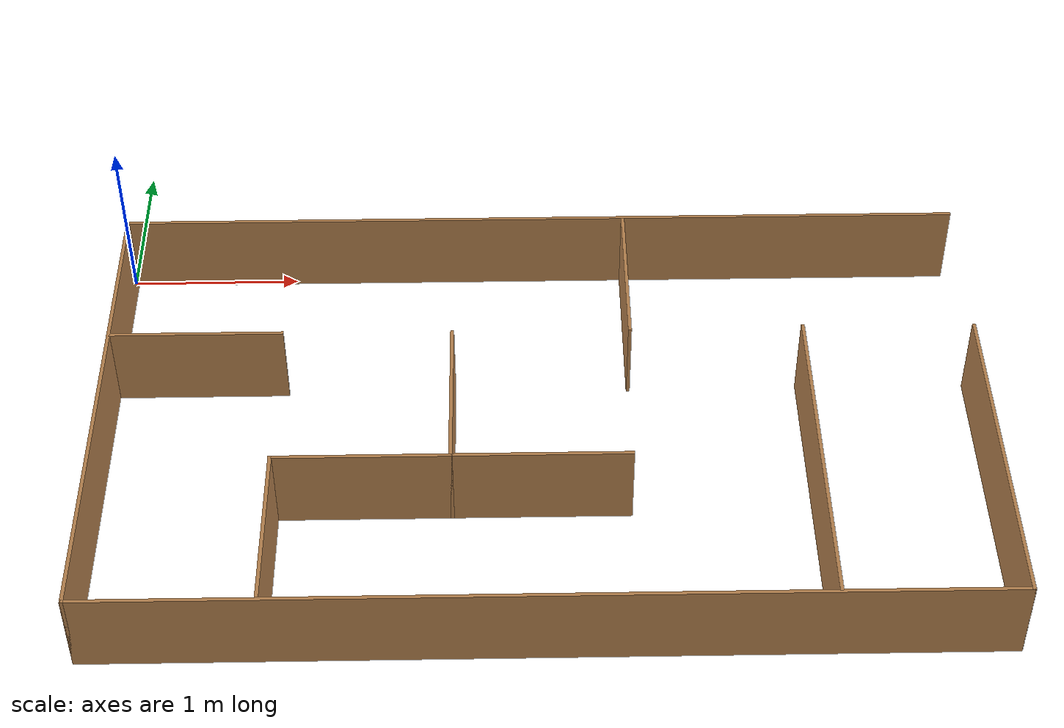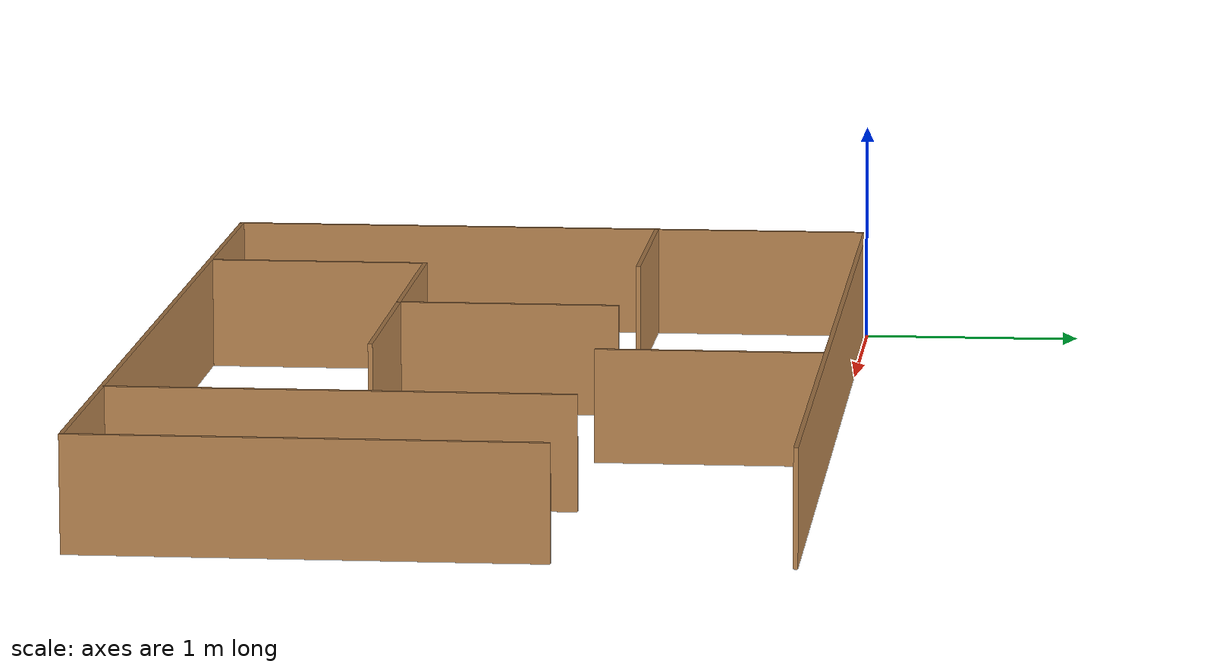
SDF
<?xml version='1.0'?>
<sdf version='1.6'>
  <model name='exp_03'>
    <pose frame=''>2.5 -1.5 0 0 -0 0</pose>
    <link name='Wall_0'>
      <collision name='Wall_0_Collision'>
        <geometry>
          <box>
            <size>5 0.02 0.5</size>
          </box>
        </geometry>
        <pose frame=''>0 0 0.25 0 -0 0</pose>
      </collision>
      <visual name='Wall_0_Visual'>
        <pose frame=''>0 0 0.25 0 -0 0</pose>
        <geometry>
          <box>
            <size>5 0.02 0.5</size>
          </box>
        </geometry>
        <material>
          <script>
            <uri>file://media/materials/scripts/gazebo.material</uri>
            <name>Gazebo/Wood</name>
          </script>
          <ambient>1 1 1 1</ambient>
        </material>
        <meta>
          <layer>0</layer>
        </meta>
      </visual>
      <pose frame=''>0 1.49 0 0 -0 0</pose>
    </link>
    <link name='Wall_10'>
      <collision name='Wall_10_Collision'>
        <geometry>
          <box>
            <size>1 0.02 0.5</size>
          </box>
        </geometry>
        <pose frame=''>0 0 0.25 0 -0 0</pose>
      </collision>
      <visual name='Wall_10_Visual'>
        <pose frame=''>0 0 0.25 0 -0 0</pose>
        <geometry>
          <box>
            <size>1 0.02 0.5</size>
          </box>
        </geometry>
        <material>
          <script>
            <uri>file://media/materials/scripts/gazebo.material</uri>
            <name>Gazebo/Wood</name>
          </script>
          <ambient>1 1 1 1</ambient>
        </material>
        <meta>
          <layer>0</layer>
        </meta>
      </visual>
      <pose frame=''>-1.98692 0.499034 0 0 -0 0</pose>
    </link>
    <link name='Wall_12'>
      <collision name='Wall_12_Collision'>
        <geometry>
          <box>
            <size>2 0.02 0.5</size>
          </box>
        </geometry>
        <pose frame=''>0 0 0.25 0 -0 0</pose>
      </collision>
      <visual name='Wall_12_Visual'>
        <pose frame=''>0 0 0.25 0 -0 0</pose>
        <geometry>
          <box>
            <size>2 0.02 0.5</size>
          </box>
        </geometry>
        <material>
          <script>
            <uri>file://media/materials/scripts/gazebo.material</uri>
            <name>Gazebo/Wood</name>
          </script>
          <ambient>1 1 1 1</ambient>
        </material>
        <meta>
          <layer>0</layer>
        </meta>
      </visual>
      <pose frame=''>1.50274 -0.486648 0 0 -0 -1.5708</pose>
    </link>
    <link name='Wall_14'>
      <collision name='Wall_14_Collision'>
        <geometry>
          <box>
            <size>1 0.02 0.5</size>
          </box>
        </geometry>
        <pose frame=''>0 0 0.25 0 -0 0</pose>
      </collision>
      <visual name='Wall_14_Visual'>
        <pose frame=''>0 0 0.25 0 -0 0</pose>
        <geometry>
          <box>
            <size>1 0.02 0.5</size>
          </box>
        </geometry>
        <material>
          <script>
            <uri>file://media/materials/scripts/gazebo.material</uri>
            <name>Gazebo/Wood</name>
          </script>
          <ambient>1 1 1 1</ambient>
        </material>
        <meta>
          <layer>0</layer>
        </meta>
      </visual>
      <pose frame=''>0.5051 0.989021 0 0 -0 -1.5708</pose>
    </link>
    <link name='Wall_16'>
      <collision name='Wall_16_Collision'>
        <geometry>
          <box>
            <size>1 0.02 0.5</size>
          </box>
        </geometry>
        <pose frame=''>0 0 0.25 0 -0 0</pose>
      </collision>
      <visual name='Wall_16_Visual'>
        <pose frame=''>0 0 0.25 0 -0 0</pose>
        <geometry>
          <box>
            <size>1 0.02 0.5</size>
          </box>
        </geometry>
        <material>
          <script>
            <uri>file://media/materials/scripts/gazebo.material</uri>
            <name>Gazebo/Wood</name>
          </script>
          <ambient>1 1 1 1</ambient>
        </material>
        <meta>
          <layer>0</layer>
        </meta>
      </visual>
      <pose frame=''>-0.013492 -0.489499 0 0 -0 0</pose>
    </link>
    <link name='Wall_18'>
      <collision name='Wall_18_Collision'>
        <geometry>
          <box>
            <size>1 0.02 0.5</size>
          </box>
        </geometry>
        <pose frame=''>0 0 0.25 0 -0 0</pose>
      </collision>
      <visual name='Wall_18_Visual'>
        <pose frame=''>0 0 0.25 0 -0 0</pose>
        <geometry>
          <box>
            <size>1 0.02 0.5</size>
          </box>
        </geometry>
        <material>
          <script>
            <uri>file://media/materials/scripts/gazebo.material</uri>
            <name>Gazebo/Wood</name>
          </script>
          <ambient>1 1 1 1</ambient>
        </material>
        <meta>
          <layer>0</layer>
        </meta>
      </visual>
      <pose frame=''>-1.007 -0.49 0 0 -0 0</pose>
    </link>
    <link name='Wall_2'>
      <collision name='Wall_2_Collision'>
        <geometry>
          <box>
            <size>3 0.02 0.5</size>
          </box>
        </geometry>
        <pose frame=''>0 0 0.25 0 -0 0</pose>
      </collision>
      <visual name='Wall_2_Visual'>
        <pose frame=''>0 0 0.25 0 -0 0</pose>
        <geometry>
          <box>
            <size>3 0.02 0.5</size>
          </box>
        </geometry>
        <material>
          <script>
            <uri>file://media/materials/scripts/gazebo.material</uri>
            <name>Gazebo/Wood</name>
          </script>
          <ambient>1 1 1 1</ambient>
        </material>
        <meta>
          <layer>0</layer>
        </meta>
      </visual>
      <pose frame=''>-2.49 0 0 0 -0 -1.5708</pose>
    </link>
    <link name='Wall_20'>
      <collision name='Wall_20_Collision'>
        <geometry>
          <box>
            <size>1 0.02 0.5</size>
          </box>
        </geometry>
        <pose frame=''>0 0 0.25 0 -0 0</pose>
      </collision>
      <visual name='Wall_20_Visual'>
        <pose frame=''>0 0 0.25 0 -0 0</pose>
        <geometry>
          <box>
            <size>1 0.02 0.5</size>
          </box>
        </geometry>
        <material>
          <script>
            <uri>file://media/materials/scripts/gazebo.material</uri>
            <name>Gazebo/Wood</name>
          </script>
          <ambient>1 1 1 1</ambient>
        </material>
        <meta>
          <layer>0</layer>
        </meta>
      </visual>
      <pose frame=''>-0.517 0 0 0 -0 1.5708</pose>
    </link>
    <link name='Wall_4'>
      <collision name='Wall_4_Collision'>
        <geometry>
          <box>
            <size>5 0.02 0.5</size>
          </box>
        </geometry>
        <pose frame=''>0 0 0.25 0 -0 0</pose>
      </collision>
      <visual name='Wall_4_Visual'>
        <pose frame=''>0 0 0.25 0 -0 0</pose>
        <geometry>
          <box>
            <size>5 0.02 0.5</size>
          </box>
        </geometry>
        <material>
          <script>
            <uri>file://media/materials/scripts/gazebo.material</uri>
            <name>Gazebo/Wood</name>
          </script>
          <ambient>1 1 1 1</ambient>
        </material>
        <meta>
          <layer>0</layer>
        </meta>
      </visual>
      <pose frame=''>0 -1.49 0 0 -0 0</pose>
    </link>
    <link name='Wall_6'>
      <collision name='Wall_6_Collision'>
        <geometry>
          <box>
            <size>2 0.02 0.5</size>
          </box>
        </geometry>
        <pose frame=''>0 0 0.25 0 -0 0</pose>
      </collision>
      <visual name='Wall_6_Visual'>
        <pose frame=''>0 0 0.25 0 -0 0</pose>
        <geometry>
          <box>
            <size>2 0.02 0.5</size>
          </box>
        </geometry>
        <material>
          <script>
            <uri>file://media/materials/scripts/gazebo.material</uri>
            <name>Gazebo/Wood</name>
          </script>
          <ambient>1 1 1 1</ambient>
        </material>
        <meta>
          <layer>0</layer>
        </meta>
      </visual>
      <pose frame=''>2.49 -0.5 0 0 -0 1.5708</pose>
    </link>
    <link name='Wall_8'>
      <collision name='Wall_8_Collision'>
        <geometry>
          <box>
            <size>1 0.02 0.5</size>
          </box>
        </geometry>
        <pose frame=''>0 0 0.25 0 -0 0</pose>
      </collision>
      <visual name='Wall_8_Visual'>
        <pose frame=''>0 0 0.25 0 -0 0</pose>
        <geometry>
          <box>
            <size>1 0.02 0.5</size>
          </box>
        </geometry>
        <material>
          <script>
            <uri>file://media/materials/scripts/gazebo.material</uri>
            <name>Gazebo/Wood</name>
          </script>
          <ambient>1 1 1 1</ambient>
        </material>
        <meta>
          <layer>0</layer>
        </meta>
      </visual>
      <pose frame=''>-1.49724 -0.98 0 0 -0 1.57031</pose>
    </link>
    <static>1</static>
  </model>
</sdf>
